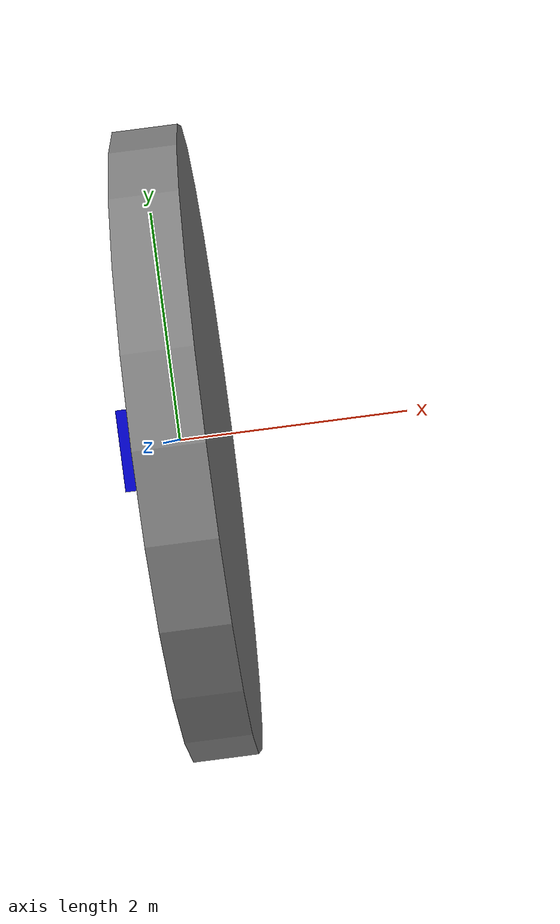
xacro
<?xml version="1.0"?>
<robot name="simple_fly_wheel" xmlns:xacro="http://www.ros.org/wiki/xacro">
   <xacro:arg name="wheel_mass" default="2" />
   <xacro:arg name="wheel_radius" default="2" />
   <xacro:property name="wheel_mass" value="$(arg wheel_mass)" />
   <xacro:property name="wheel_radius" value="$(arg wheel_radius)" />
   <xacro:property name="axis_inertia" value="${0.5 * wheel_mass * (wheel_radius ** 2.0)}"/>
   <link name="world">
        <inertial>
            <origin xyz="0.0 0.0 0" rpy="0.0 0.0 0.0"/>
            <mass value="0.001"/>
            <inertia ixx="0.00001" ixy="0.0" ixz="0.0" iyy="0.00001" iyz="0.0" izz="0.00001"/>
        </inertial>
    </link>
    <link name="base">
        <inertial>
            <origin xyz="0.0 0.0 0.0" rpy="0.0 0.0 0.0"/>
            <mass value="1"/>
         </inertial>
        <visual>
            <origin xyz="0.0 0.0 0.0" rpy="0.0 0.0 0.0"/>
            <geometry>
                <box size="0.1 0.5 5"/>
            </geometry>
            <material name="blue">
                <color rgba="0.0 0.0 0.8 1.0"/>
            </material>
        </visual>
    </link>
    <link name="axle">
        <inertial>
            <origin xyz="0 0 0" rpy="0.0 0.0 0.0"/>
            <mass value="0.000001"/>
         </inertial>
        <visual>
            <origin xyz="0.0 0.0 0.0" rpy="0.0 0.0 0.0"/>
            <geometry>
                <cylinder length="0.6" radius="0.01"/>
            </geometry>
            <material name="red">
                <color rgba="0.8 0.0 0.0 1.0"/>
            </material>
        </visual>
    </link>
    <link name="flywheel">
        <inertial>
            <origin xyz="0.0 0.0 0.0" rpy="0.0 0.0 0.0"/>
            <mass value="${wheel_mass}"/>
            <inertia ixx="${0.5 * axis_inertia}" ixy="0" ixz="0" iyy="${0.5 * axis_inertia}" iyz="0" izz="${axis_inertia}" />
        </inertial>
        <visual>
            <origin xyz="0 0 0" rpy="0 0 0"/>
            <geometry>
                <cylinder length="0.4" radius="${wheel_radius}"/>
            </geometry>
            <material name="gray">
                <color rgba="0.5 0.5 0.5 1.0"/>
            </material>
        </visual>
    </link>
    <joint name="world" type="fixed">
        <parent link="world"/>
        <child link="base"/>
        <origin xyz="0.0 0.0 2.5" rpy="0.0 0.0 0.0"/>
    </joint>
    <joint name="axle" type="fixed">
        <parent link="base"/>
        <child link="axle"/>
        <origin xyz="0.25 0.0 2" rpy="-1.570796327 0.0 -1.570796327"/>
    </joint>
    <joint name="wheel" type="revolute">
        <parent link="axle"/>
        <child link="flywheel"/>
        <origin xyz="0.0 0.0 .1" rpy="0 0 0"/>
        <axis xyz="0.0 0.0 1.0"/>
    </joint>
</robot>
